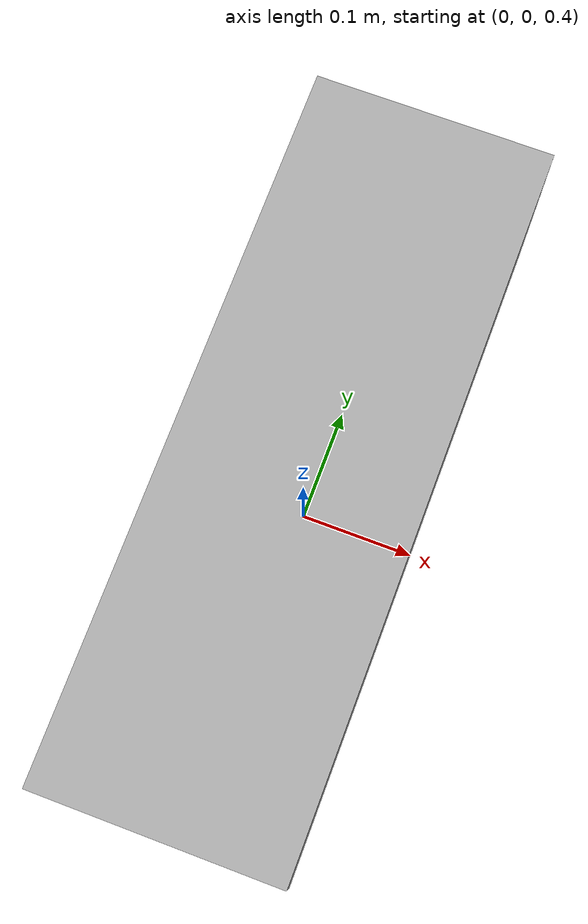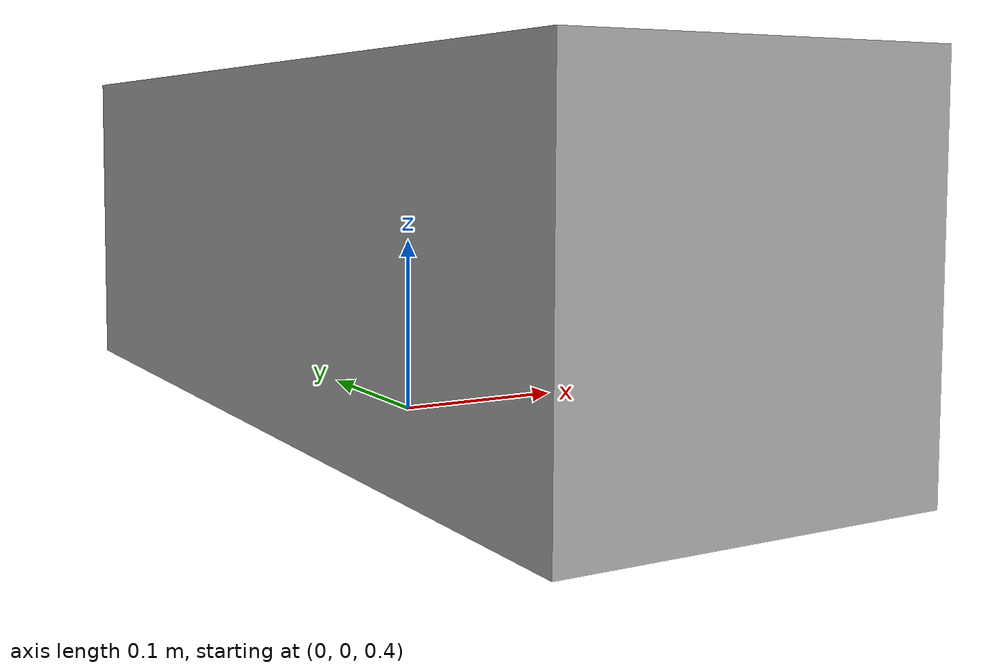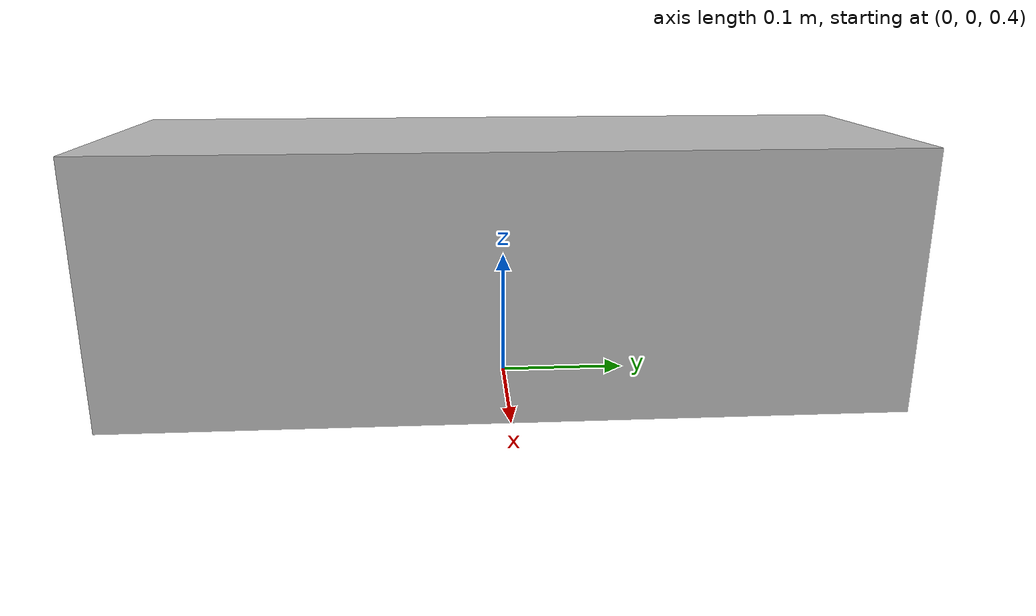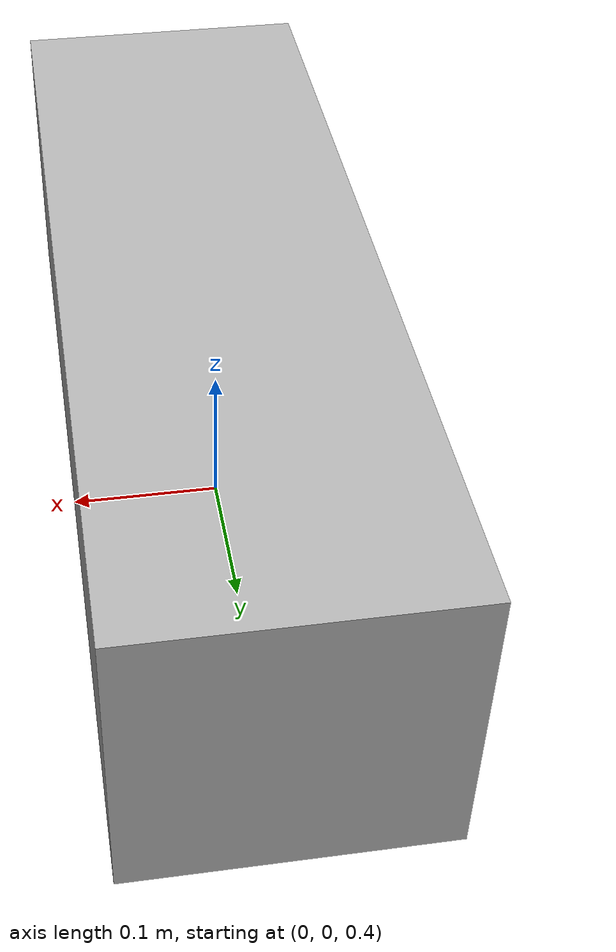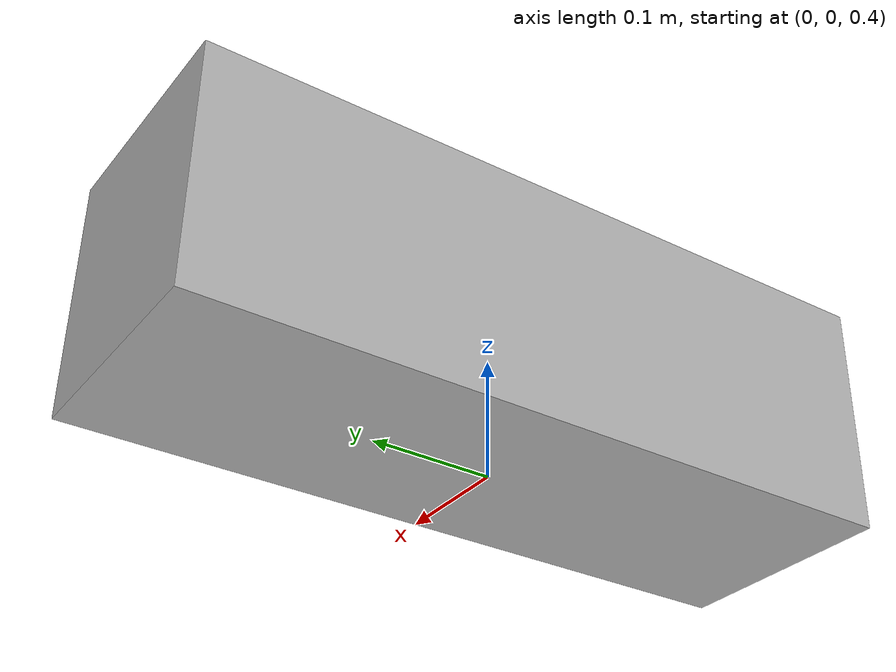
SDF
<?xml version="1.0"?>
<sdf version="1.6">
  <model name="box_gray07">
    <static>true</static>
    <link name="box_link">
      <pose>0 0 0.5 0 0 0</pose>
      <collision name="collision">
        <geometry>
          <box>
	    <size>0.2 0.6 0.2</size>
          </box>
        </geometry>
      </collision>
      <visual name="visual">
        <geometry>
	  <box>
	    <size>0.2 0.6 0.2</size>
          </box>
        </geometry>
        <material>
          <ambient>0.7 0.7 0.7 1</ambient>
        </material>
      </visual>
    </link>
  </model>
</sdf>
